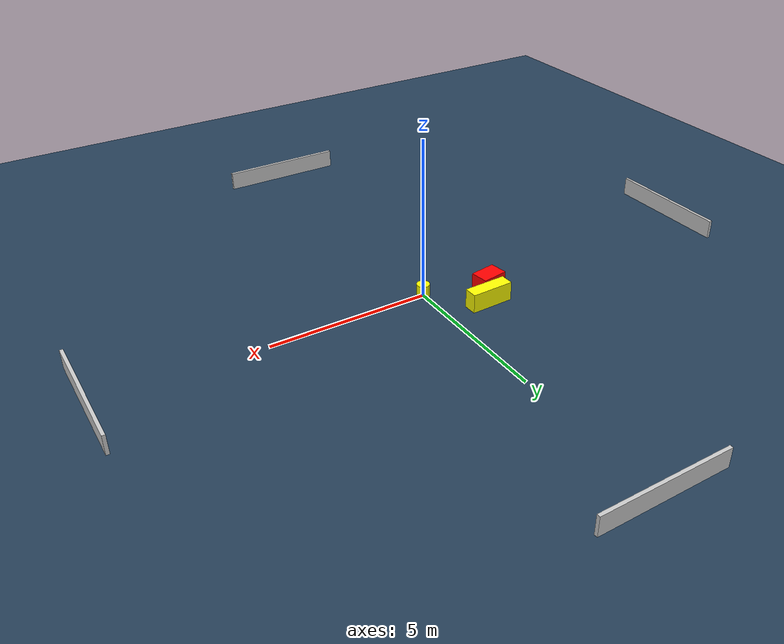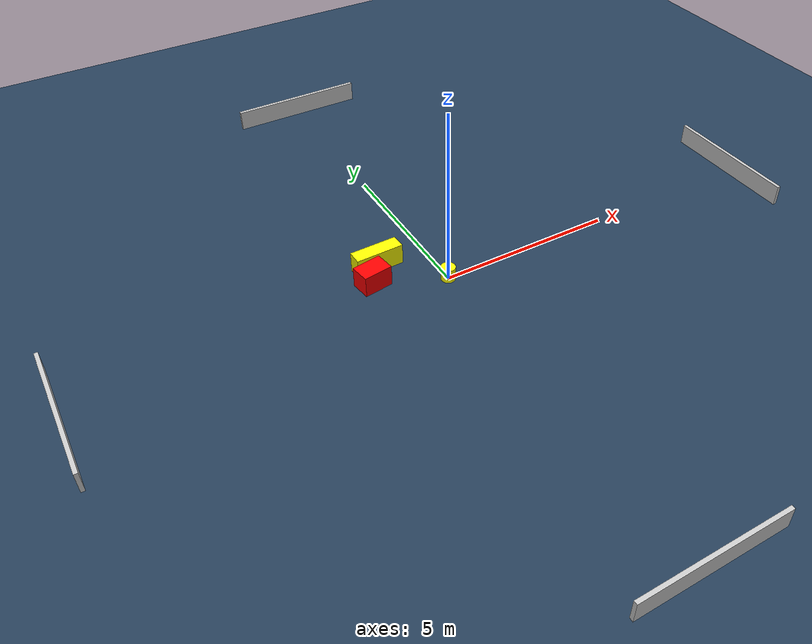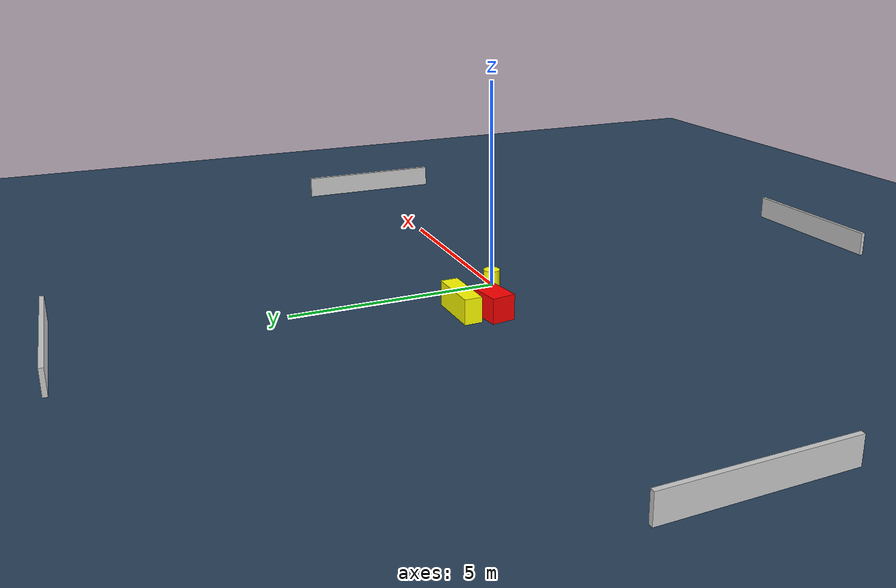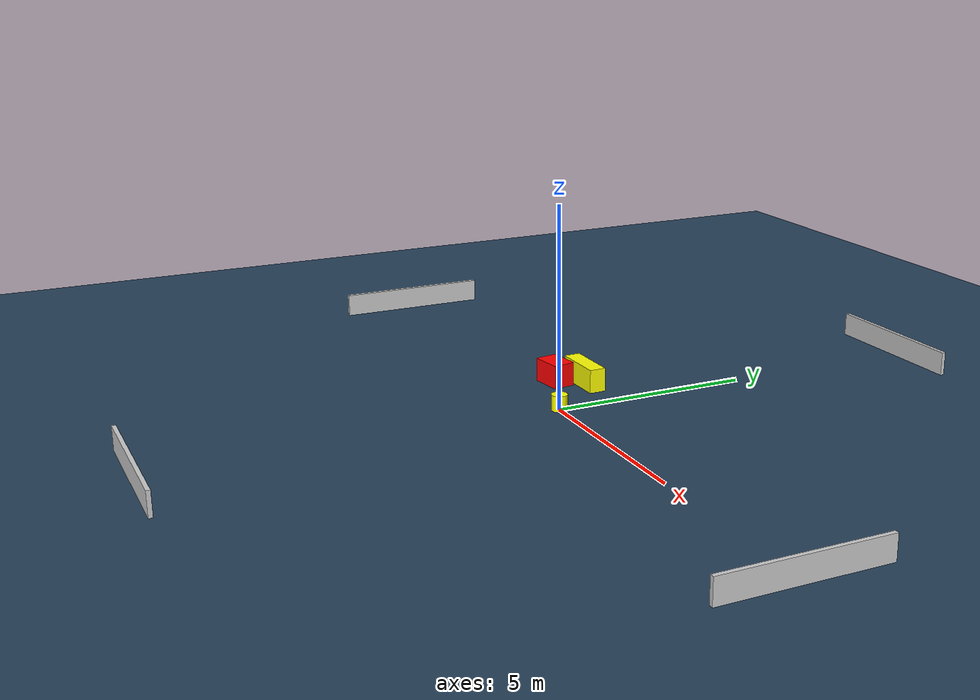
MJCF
<?xml version="1.0" ?>
<mujoco model="generated_environment">
  <option timestep="0.01" integrator="RK4" cone="elliptic"/>
  <default>
    <geom density="1"/>
  </default>
  <asset>
    <texture builtin="gradient" height="3072" name="skybox" rgb1="0.3 0.5 0.7" rgb2="0 0 0" type="skybox" width="512"/>
    <texture builtin="checker" height="300" name="groundplane" rgb1="0.2 0.3 0.4" rgb2="0.1 0.2 0.3" type="2d" width="300"/>
    <material name="groundplane" reflectance="0.2" texrepeat="5 5" texture="groundplane"/>
  </asset>
  <worldbody>
    <light dir="0 0 -1" directional="true" pos="0 0 1.5"/>
    <geom condim="3" friction="0.5 0.005 0.001" material="groundplane" name="floor" pos="0 0 0" size="0 0 0.05" type="plane"/>
    <body name="walls">
      <geom name="wall_1" condim="4" pos="-10.0 0.0 0.3" rgba="0.800000011920929 0.800000011920929 0.800000011920929 1.0" size="0.05 2.0 0.3" type="box"/>
      <geom name="wall_2" condim="4" pos="10.0 0.0 0.3" rgba="0.800000011920929 0.800000011920929 0.800000011920929 1.0" size="0.05 2.0 0.3" type="box"/>
      <geom name="wall_3" condim="4" pos="0.0 -10.0 0.3" rgba="0.800000011920929 0.800000011920929 0.800000011920929 1.0" size="2.0 0.05 0.3" type="box"/>
      <geom name="wall_4" condim="4" pos="0.0 10.0 0.3" rgba="0.800000011920929 0.800000011920929 0.800000011920929 1.0" size="2.0 0.05 0.3" type="box"/>
    </body>
    <body name="robot">
      <joint name="joint_x" type="slide" pos="0 0 0" axis="1 0 0"/>
      <joint name="joint_y" type="slide" pos="0 0 0" axis="0 1 0"/>
      <geom name="robot" type="cylinder" pos="0.0 0.0 0.2" size="0.2 0.2 0.0" mass="5.0" friction="1.0 0.005 0.0001" condim="4" rgba="1.0 1.0 0.0 1.0"/>
    </body>
    <body name="obstacle_1_movable">
      <geom name="obstacle_1_movable" condim="4" pos="-1.3979552858256656 1.3918667923457315 0.3" euler="0 0 271.42246487697076" friction="0.0 0.005 0.001" rgba="1.0 1.0 0.0 1.0" size="0.20839203072392837 0.6732266211589462 0.3" type="box" mass="0.1"/>
      <joint type="free"/>
    </body>
    <body name="obstacle_2_static">
      <geom name="obstacle_2_static" condim="4" pos="-1.837590373246106 0.7783386276883347 0.3" euler="0 0 278.6393137524562" friction="0.0 0.005 0.001" rgba="1.0 0.0 0.0 1.0" size="0.28332410410133035 0.4124163716286741 0.3" type="box"/>
    </body>
  </worldbody>
  <actuator>
    <motor name="actuator_x" joint="joint_x" gear="1" ctrlrange="-1 1"/>
    <motor name="actuator_y" joint="joint_y" gear="1" ctrlrange="-1 1"/>
  </actuator>
</mujoco>
